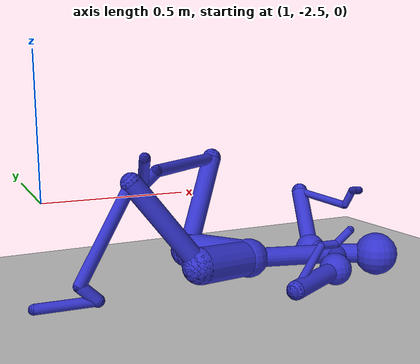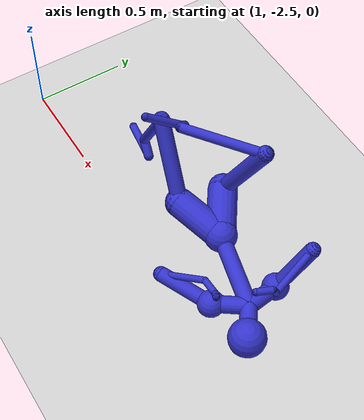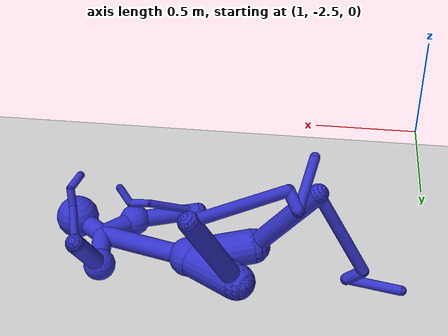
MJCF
<?xml version='1.0' encoding='utf-8'?>
<mujoco model="bjj_player2"><compiler angle="radian" coordinate="local" /><default><joint armature="0.01" damping="0.1" limited="true" /><geom contype="1" conaffinity="1" friction="1 0.5 0.5" /></default><asset><material name="blue" rgba="0.2 0.2 0.8 1" /></asset><worldbody><geom name="floor" type="plane" pos="0 0 -0.6260" size="30 30 0.1" rgba="0.8 0.8 0.8 1" /><body name="player2_Core" pos="2.0880 -1.9512 -0.4716"><geom type="sphere" size="0.1" material="blue" /><freejoint name="player2_root" /><geom type="capsule" fromto="0 0 0 -0.3108 -0.0900 0.0240" size="0.0900" material="blue" /><body name="player2_LeftHip" pos="-0.3108 -0.0900 0.0240"><geom type="sphere" size="0.09" material="blue" /><joint name="player2_LeftHip_joint" type="ball" limited="false" damping="0.5" /><geom type="capsule" fromto="0 0 0 -0.3084 0.0648 0.4116" size="0.0500" material="blue" /><body name="player2_LeftKnee" pos="-0.3084 0.0648 0.4116"><geom type="sphere" size="0.05" material="blue" /><joint name="player2_LeftKnee_joint" type="hinge" axis="0 1 0" limited="true" range="-2.3 0" damping="0.5" /><geom type="capsule" fromto="0 0 0 -0.2472 0.0132 -0.4500" size="0.0300" material="blue" /><body name="player2_LeftAnkle" pos="-0.2472 0.0132 -0.4500"><geom type="sphere" size="0.03" material="blue" /><joint name="player2_LeftAnkle_joint" type="hinge" axis="1 0 0" limited="false" damping="0.5" /><geom type="capsule" fromto="0 0 0 0.0768 -0.0156 -0.0756" size="0.0300" material="blue" /><body name="player2_LeftHeel" pos="0.0768 -0.0156 -0.0756"><geom type="sphere" size="0.03" material="blue" /><joint name="player2_LeftHeel_joint" type="hinge" axis="1 0 0" limited="false" damping="0.5" /><geom type="capsule" fromto="0 0 0 -0.2724 0.0432 -0.0084" size="0.0250" material="blue" /><body name="player2_LeftToe" pos="-0.2724 0.0432 -0.0084"><geom type="sphere" size="0.025" material="blue" /><joint name="player2_LeftToe_joint" type="hinge" axis="1 0 0" limited="false" damping="0.5" /></body></body></body></body></body><geom type="capsule" fromto="0 0 0 -0.2616 0.1836 0.0312" size="0.0900" material="blue" /><body name="player2_RightHip" pos="-0.2616 0.1836 0.0312"><geom type="sphere" size="0.09" material="blue" /><joint name="player2_RightHip_joint" type="ball" limited="false" damping="0.5" /><geom type="capsule" fromto="0 0 0 0.1992 0.1308 0.4596" size="0.0500" material="blue" /><body name="player2_RightKnee" pos="0.1992 0.1308 0.4596"><geom type="sphere" size="0.05" material="blue" /><joint name="player2_RightKnee_joint" type="hinge" axis="0 1 0" limited="true" range="-2.3 0" damping="0.5" /><geom type="capsule" fromto="0 0 0 -0.4200 -0.2952 -0.0132" size="0.0300" material="blue" /><body name="player2_RightAnkle" pos="-0.4200 -0.2952 -0.0132"><geom type="sphere" size="0.03" material="blue" /><joint name="player2_RightAnkle_joint" type="hinge" axis="1 0 0" limited="false" damping="0.5" /><geom type="capsule" fromto="0 0 0 -0.0504 0.0576 -0.0720" size="0.0300" material="blue" /><body name="player2_RightHeel" pos="-0.0504 0.0576 -0.0720"><geom type="sphere" size="0.03" material="blue" /><joint name="player2_RightHeel_joint" type="hinge" axis="1 0 0" limited="false" damping="0.5" /><geom type="capsule" fromto="0 0 0 -0.0588 -0.2208 0.1536" size="0.0250" material="blue" /><body name="player2_RightToe" pos="-0.0588 -0.2208 0.1536"><geom type="sphere" size="0.025" material="blue" /><joint name="player2_RightToe_joint" type="hinge" axis="1 0 0" limited="false" damping="0.5" /></body></body></body></body></body><geom type="capsule" fromto="0 0 0 0.4716 -0.1200 -0.0036" size="0.0500" material="blue" /><body name="player2_Neck" pos="0.4716 -0.1200 -0.0036"><geom type="sphere" size="0.05" material="blue" /><joint name="player2_Neck_joint" type="hinge" axis="1 0 0" limited="false" damping="0.5" /><geom type="capsule" fromto="0 0 0 0.1596 -0.1200 0.0072" size="0.0500" material="blue" /><body name="player2_Head" pos="0.1596 -0.1200 0.0072"><geom type="sphere" size="0.11" material="blue" /><joint name="player2_Head_joint" type="hinge" axis="1 0 0" limited="false" damping="0.5" /></body><geom type="capsule" fromto="0 0 0 -0.1344 -0.1644 -0.0240" size="0.0500" material="blue" /><body name="player2_LeftShoulder" pos="-0.1344 -0.1644 -0.0240"><geom type="sphere" size="0.08" material="blue" /><joint name="player2_LeftShoulder_joint" type="ball" limited="false" damping="0.5" /><geom type="capsule" fromto="0 0 0 -0.3204 -0.1344 -0.0180" size="0.0450" material="blue" /><body name="player2_LeftElbow" pos="-0.3204 -0.1344 -0.0180"><geom type="sphere" size="0.045" material="blue" /><joint name="player2_LeftElbow_joint" type="hinge" axis="0 1 0" limited="true" range="-2.3 0" damping="0.5" /><geom type="capsule" fromto="0 0 0 0.2376 0.1440 0.1464" size="0.0200" material="blue" /><body name="player2_LeftWrist" pos="0.2376 0.1440 0.1464"><geom type="sphere" size="0.02" material="blue" /><joint name="player2_LeftWrist_joint" type="hinge" axis="1 0 0" limited="false" damping="0.5" /><geom type="capsule" fromto="0 0 0 0.0960 0.0048 -0.0036" size="0.0200" material="blue" /><body name="player2_LeftHand" pos="0.0960 0.0048 -0.0036"><geom type="sphere" size="0.02" material="blue" /><joint name="player2_LeftHand_joint" type="hinge" axis="1 0 0" limited="false" damping="0.5" /><geom type="capsule" fromto="0 0 0 0.0564 -0.0312 0.0708" size="0.0200" material="blue" /><body name="player2_LeftFingers" pos="0.0564 -0.0312 0.0708"><geom type="sphere" size="0.02" material="blue" /><joint name="player2_LeftFingers_joint" type="hinge" axis="1 0 0" limited="false" damping="0.5" /></body></body></body></body></body><geom type="capsule" fromto="0 0 0 -0.0324 0.2040 -0.0180" size="0.0500" material="blue" /><body name="player2_RightShoulder" pos="-0.0324 0.2040 -0.0180"><geom type="sphere" size="0.08" material="blue" /><joint name="player2_RightShoulder_joint" type="ball" limited="false" damping="0.5" /><geom type="capsule" fromto="0 0 0 0.0444 0.1848 0.2940" size="0.0450" material="blue" /><body name="player2_RightElbow" pos="0.0444 0.1848 0.2940"><geom type="sphere" size="0.045" material="blue" /><joint name="player2_RightElbow_joint" type="hinge" axis="0 1 0" limited="true" range="-2.3 0" damping="0.5" /><geom type="capsule" fromto="0 0 0 0.0948 -0.3048 -0.0396" size="0.0200" material="blue" /><body name="player2_RightWrist" pos="0.0948 -0.3048 -0.0396"><geom type="sphere" size="0.02" material="blue" /><joint name="player2_RightWrist_joint" type="hinge" axis="1 0 0" limited="false" damping="0.5" /><geom type="capsule" fromto="0 0 0 0.0144 -0.0408 0.0864" size="0.0200" material="blue" /><body name="player2_RightHand" pos="0.0144 -0.0408 0.0864"><geom type="sphere" size="0.02" material="blue" /><joint name="player2_RightHand_joint" type="hinge" axis="1 0 0" limited="false" damping="0.5" /><geom type="capsule" fromto="0 0 0 -0.0288 -0.0900 0.0168" size="0.0200" material="blue" /><body name="player2_RightFingers" pos="-0.0288 -0.0900 0.0168"><geom type="sphere" size="0.02" material="blue" /><joint name="player2_RightFingers_joint" type="hinge" axis="1 0 0" limited="false" damping="0.5" /></body></body></body></body></body></body></body></worldbody><actuator><position name="player2_LeftHip_joint_act" joint="player2_LeftHip_joint" kp="50" /><position name="player2_LeftKnee_joint_act" joint="player2_LeftKnee_joint" kp="50" /><position name="player2_LeftAnkle_joint_act" joint="player2_LeftAnkle_joint" kp="50" /><position name="player2_LeftHeel_joint_act" joint="player2_LeftHeel_joint" kp="50" /><position name="player2_LeftToe_joint_act" joint="player2_LeftToe_joint" kp="50" /><position name="player2_RightHip_joint_act" joint="player2_RightHip_joint" kp="50" /><position name="player2_RightKnee_joint_act" joint="player2_RightKnee_joint" kp="50" /><position name="player2_RightAnkle_joint_act" joint="player2_RightAnkle_joint" kp="50" /><position name="player2_RightHeel_joint_act" joint="player2_RightHeel_joint" kp="50" /><position name="player2_RightToe_joint_act" joint="player2_RightToe_joint" kp="50" /><position name="player2_Neck_joint_act" joint="player2_Neck_joint" kp="50" /><position name="player2_Head_joint_act" joint="player2_Head_joint" kp="50" /><position name="player2_LeftShoulder_joint_act" joint="player2_LeftShoulder_joint" kp="50" /><position name="player2_LeftElbow_joint_act" joint="player2_LeftElbow_joint" kp="50" /><position name="player2_LeftWrist_joint_act" joint="player2_LeftWrist_joint" kp="50" /><position name="player2_LeftHand_joint_act" joint="player2_LeftHand_joint" kp="50" /><position name="player2_LeftFingers_joint_act" joint="player2_LeftFingers_joint" kp="50" /><position name="player2_RightShoulder_joint_act" joint="player2_RightShoulder_joint" kp="50" /><position name="player2_RightElbow_joint_act" joint="player2_RightElbow_joint" kp="50" /><position name="player2_RightWrist_joint_act" joint="player2_RightWrist_joint" kp="50" /><position name="player2_RightHand_joint_act" joint="player2_RightHand_joint" kp="50" /><position name="player2_RightFingers_joint_act" joint="player2_RightFingers_joint" kp="50" /></actuator></mujoco>
